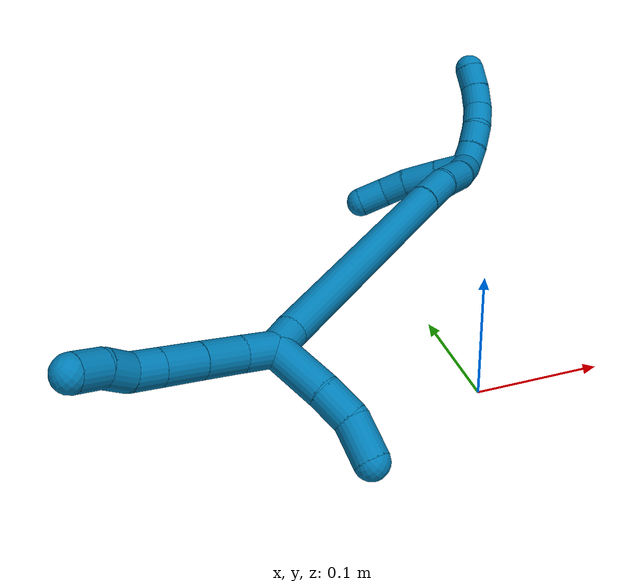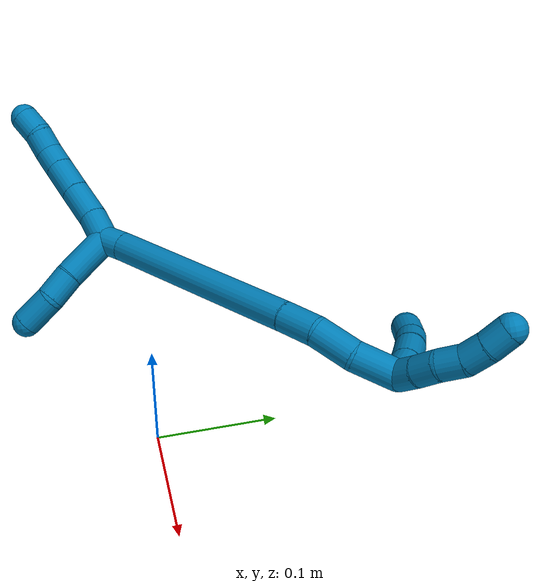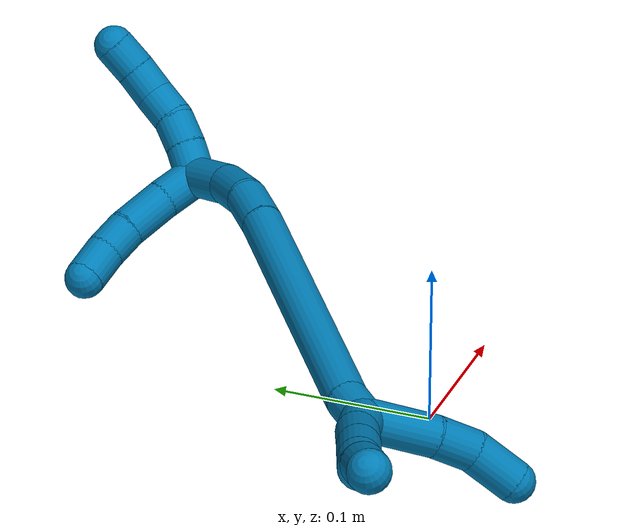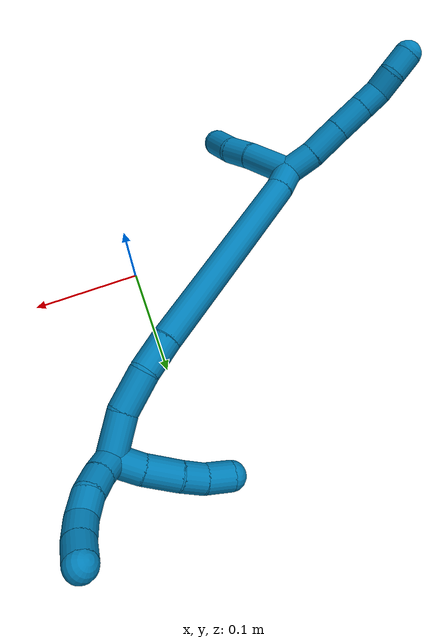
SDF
<sdf version="1.7">
 <world name="default">
  <model name="9">
   <static>0</static>
   <link name="9">
    <collision name="collision-cylinder-e_1_2_8">
     <pose>-0.007751 -0.003467 0.010045 0.332373 -0.630218 -0.109243</pose>
     <geometry><cylinder><radius>0.0125</radius><length>0.026306</length></cylinder></geometry>
     <surface>
      <friction><ode><mu>1.16</mu><mu2>1.16</mu2><slip1>0</slip1><slip2>0</slip2></ode></friction>
      <contact><ode><kp>1e+06</kp><kd>1</kd><max_vel>0</max_vel><min_depth>0.001</min_depth></ode></contact>
     </surface>
    </collision>
    <visual name="visual-cylinder-e_1_2_8">
     <pose>-0.007751 -0.003467 0.010045 0.332373 -0.630218 -0.109243</pose>
     <geometry><cylinder><radius>0.0125</radius><length>0.026306</length></cylinder></geometry>
     <material><ambient>0 0.490196 0.709804 1</ambient></material>
    </visual>
    <collision name="collision-cylinder-e_2_8_9">
     <pose>-0.023287 -0.012956 0.032687 0.445894 -0.508596 -0.117722</pose>
     <geometry><cylinder><radius>0.0125</radius><length>0.031972</length></cylinder></geometry>
     <surface>
      <friction><ode><mu>1.16</mu><mu2>1.16</mu2><slip1>0</slip1><slip2>0</slip2></ode></friction>
      <contact><ode><kp>1e+06</kp><kd>1</kd><max_vel>0</max_vel><min_depth>0.001</min_depth></ode></contact>
     </surface>
    </collision>
    <visual name="visual-cylinder-e_2_8_9">
     <pose>-0.023287 -0.012956 0.032687 0.445894 -0.508596 -0.117722</pose>
     <geometry><cylinder><radius>0.0125</radius><length>0.031972</length></cylinder></geometry>
     <material><ambient>0 0.490196 0.709804 1</ambient></material>
    </visual>
    <collision name="collision-cylinder-e_3_9_10">
     <pose>-0.038522 -0.024433 0.056902 0.439017 -0.525946 -0.119978</pose>
     <geometry><cylinder><radius>0.0125</radius><length>0.029681</length></cylinder></geometry>
     <surface>
      <friction><ode><mu>1.16</mu><mu2>1.16</mu2><slip1>0</slip1><slip2>0</slip2></ode></friction>
      <contact><ode><kp>1e+06</kp><kd>1</kd><max_vel>0</max_vel><min_depth>0.001</min_depth></ode></contact>
     </surface>
    </collision>
    <visual name="visual-cylinder-e_3_9_10">
     <pose>-0.038522 -0.024433 0.056902 0.439017 -0.525946 -0.119978</pose>
     <geometry><cylinder><radius>0.0125</radius><length>0.029681</length></cylinder></geometry>
     <material><ambient>0 0.490196 0.709804 1</ambient></material>
    </visual>
    <collision name="collision-cylinder-e_4_10_11">
     <pose>-0.051098 -0.033633 0.076527 0.437448 -0.525472 -0.119424</pose>
     <geometry><cylinder><radius>0.0125</radius><length>0.020436</length></cylinder></geometry>
     <surface>
      <friction><ode><mu>1.16</mu><mu2>1.16</mu2><slip1>0</slip1><slip2>0</slip2></ode></friction>
      <contact><ode><kp>1e+06</kp><kd>1</kd><max_vel>0</max_vel><min_depth>0.001</min_depth></ode></contact>
     </surface>
    </collision>
    <visual name="visual-cylinder-e_4_10_11">
     <pose>-0.051098 -0.033633 0.076527 0.437448 -0.525472 -0.119424</pose>
     <geometry><cylinder><radius>0.0125</radius><length>0.020436</length></cylinder></geometry>
     <material><ambient>0 0.490196 0.709804 1</ambient></material>
    </visual>
    <collision name="collision-cylinder-e_5_11_12">
     <pose>-0.058091 -0.040784 0.093762 0.353606 -0.187639 -0.033621</pose>
     <geometry><cylinder><radius>0.0125</radius><length>0.020026</length></cylinder></geometry>
     <surface>
      <friction><ode><mu>1.16</mu><mu2>1.16</mu2><slip1>0</slip1><slip2>0</slip2></ode></friction>
      <contact><ode><kp>1e+06</kp><kd>1</kd><max_vel>0</max_vel><min_depth>0.001</min_depth></ode></contact>
     </surface>
    </collision>
    <visual name="visual-cylinder-e_5_11_12">
     <pose>-0.058091 -0.040784 0.093762 0.353606 -0.187639 -0.033621</pose>
     <geometry><cylinder><radius>0.0125</radius><length>0.020026</length></cylinder></geometry>
     <material><ambient>0 0.490196 0.709804 1</ambient></material>
    </visual>
    <collision name="collision-cylinder-e_6_12_6">
     <pose>-0.064184 -0.049316 0.111494 0.542427 -0.402305 -0.113279</pose>
     <geometry><cylinder><radius>0.0125</radius><length>0.021579</length></cylinder></geometry>
     <surface>
      <friction><ode><mu>1.16</mu><mu2>1.16</mu2><slip1>0</slip1><slip2>0</slip2></ode></friction>
      <contact><ode><kp>1e+06</kp><kd>1</kd><max_vel>0</max_vel><min_depth>0.001</min_depth></ode></contact>
     </surface>
    </collision>
    <visual name="visual-cylinder-e_6_12_6">
     <pose>-0.064184 -0.049316 0.111494 0.542427 -0.402305 -0.113279</pose>
     <geometry><cylinder><radius>0.0125</radius><length>0.021579</length></cylinder></geometry>
     <material><ambient>0 0.490196 0.709804 1</ambient></material>
    </visual>
    <collision name="collision-cylinder-e_1_2_13">
     <pose>0.005489 -0.017555 -0.012503 2.18967 0.249373 0.477029</pose>
     <geometry><cylinder><radius>0.0125</radius><length>0.044479</length></cylinder></geometry>
     <surface>
      <friction><ode><mu>1.16</mu><mu2>1.16</mu2><slip1>0</slip1><slip2>0</slip2></ode></friction>
      <contact><ode><kp>1e+06</kp><kd>1</kd><max_vel>0</max_vel><min_depth>0.001</min_depth></ode></contact>
     </surface>
    </collision>
    <visual name="visual-cylinder-e_1_2_13">
     <pose>0.005489 -0.017555 -0.012503 2.18967 0.249373 0.477029</pose>
     <geometry><cylinder><radius>0.0125</radius><length>0.044479</length></cylinder></geometry>
     <material><ambient>0 0.490196 0.709804 1</ambient></material>
    </visual>
    <collision name="collision-cylinder-e_2_13_14">
     <pose>0.012966 -0.044625 -0.03314 2.27812 0.15754 0.339357</pose>
     <geometry><cylinder><radius>0.0125</radius><length>0.025352</length></cylinder></geometry>
     <surface>
      <friction><ode><mu>1.16</mu><mu2>1.16</mu2><slip1>0</slip1><slip2>0</slip2></ode></friction>
      <contact><ode><kp>1e+06</kp><kd>1</kd><max_vel>0</max_vel><min_depth>0.001</min_depth></ode></contact>
     </surface>
    </collision>
    <visual name="visual-cylinder-e_2_13_14">
     <pose>0.012966 -0.044625 -0.03314 2.27812 0.15754 0.339357</pose>
     <geometry><cylinder><radius>0.0125</radius><length>0.025352</length></cylinder></geometry>
     <material><ambient>0 0.490196 0.709804 1</ambient></material>
    </visual>
    <collision name="collision-cylinder-e_3_14_5">
     <pose>0.012615 -0.066302 -0.049887 2.18695 -0.15572 -0.299427</pose>
     <geometry><cylinder><radius>0.0125</radius><length>0.030169</length></cylinder></geometry>
     <surface>
      <friction><ode><mu>1.16</mu><mu2>1.16</mu2><slip1>0</slip1><slip2>0</slip2></ode></friction>
      <contact><ode><kp>1e+06</kp><kd>1</kd><max_vel>0</max_vel><min_depth>0.001</min_depth></ode></contact>
     </surface>
    </collision>
    <visual name="visual-cylinder-e_3_14_5">
     <pose>0.012615 -0.066302 -0.049887 2.18695 -0.15572 -0.299427</pose>
     <geometry><cylinder><radius>0.0125</radius><length>0.030169</length></cylinder></geometry>
     <material><ambient>0 0.490196 0.709804 1</ambient></material>
    </visual>
    <collision name="collision-cylinder-e_1_2_15">
     <pose>0.005602 0.007728 -0.004244 -2.07302 0.566016 -0.913647</pose>
     <geometry><cylinder><radius>0.0125</radius><length>0.020892</length></cylinder></geometry>
     <surface>
      <friction><ode><mu>1.16</mu><mu2>1.16</mu2><slip1>0</slip1><slip2>0</slip2></ode></friction>
      <contact><ode><kp>1e+06</kp><kd>1</kd><max_vel>0</max_vel><min_depth>0.001</min_depth></ode></contact>
     </surface>
    </collision>
    <visual name="visual-cylinder-e_1_2_15">
     <pose>0.005602 0.007728 -0.004244 -2.07302 0.566016 -0.913647</pose>
     <geometry><cylinder><radius>0.0125</radius><length>0.020892</length></cylinder></geometry>
     <material><ambient>0 0.490196 0.709804 1</ambient></material>
    </visual>
    <collision name="collision-cylinder-e_2_15_16">
     <pose>0.068966 0.073247 -0.04369 -2.1179 0.70659 -1.16175</pose>
     <geometry><cylinder><radius>0.0125</radius><length>0.177937</length></cylinder></geometry>
     <surface>
      <friction><ode><mu>1.16</mu><mu2>1.16</mu2><slip1>0</slip1><slip2>0</slip2></ode></friction>
      <contact><ode><kp>1e+06</kp><kd>1</kd><max_vel>0</max_vel><min_depth>0.001</min_depth></ode></contact>
     </surface>
    </collision>
    <visual name="visual-cylinder-e_2_15_16">
     <pose>0.068966 0.073247 -0.04369 -2.1179 0.70659 -1.16175</pose>
     <geometry><cylinder><radius>0.0125</radius><length>0.177937</length></cylinder></geometry>
     <material><ambient>0 0.490196 0.709804 1</ambient></material>
    </visual>
    <collision name="collision-cylinder-e_3_16_17">
     <pose>0.135865 0.141383 -0.085646 -2.14916 0.636725 -1.09365</pose>
     <geometry><cylinder><radius>0.0125</radius><length>0.030732</length></cylinder></geometry>
     <surface>
      <friction><ode><mu>1.16</mu><mu2>1.16</mu2><slip1>0</slip1><slip2>0</slip2></ode></friction>
      <contact><ode><kp>1e+06</kp><kd>1</kd><max_vel>0</max_vel><min_depth>0.001</min_depth></ode></contact>
     </surface>
    </collision>
    <visual name="visual-cylinder-e_3_16_17">
     <pose>0.135865 0.141383 -0.085646 -2.14916 0.636725 -1.09365</pose>
     <geometry><cylinder><radius>0.0125</radius><length>0.030732</length></cylinder></geometry>
     <material><ambient>0 0.490196 0.709804 1</ambient></material>
    </visual>
    <collision name="collision-cylinder-e_4_17_18">
     <pose>0.151793 0.163241 -0.103001 -2.31504 0.409477 -0.884461</pose>
     <geometry><cylinder><radius>0.0125</radius><length>0.03412</length></cylinder></geometry>
     <surface>
      <friction><ode><mu>1.16</mu><mu2>1.16</mu2><slip1>0</slip1><slip2>0</slip2></ode></friction>
      <contact><ode><kp>1e+06</kp><kd>1</kd><max_vel>0</max_vel><min_depth>0.001</min_depth></ode></contact>
     </surface>
    </collision>
    <visual name="visual-cylinder-e_4_17_18">
     <pose>0.151793 0.163241 -0.103001 -2.31504 0.409477 -0.884461</pose>
     <geometry><cylinder><radius>0.0125</radius><length>0.03412</length></cylinder></geometry>
     <material><ambient>0 0.490196 0.709804 1</ambient></material>
    </visual>
    <collision name="collision-cylinder-e_5_18_1">
     <pose>0.162127 0.189572 -0.123482 -2.15877 0.196303 -0.363894</pose>
     <geometry><cylinder><radius>0.0125</radius><length>0.036318</length></cylinder></geometry>
     <surface>
      <friction><ode><mu>1.16</mu><mu2>1.16</mu2><slip1>0</slip1><slip2>0</slip2></ode></friction>
      <contact><ode><kp>1e+06</kp><kd>1</kd><max_vel>0</max_vel><min_depth>0.001</min_depth></ode></contact>
     </surface>
    </collision>
    <visual name="visual-cylinder-e_5_18_1">
     <pose>0.162127 0.189572 -0.123482 -2.15877 0.196303 -0.363894</pose>
     <geometry><cylinder><radius>0.0125</radius><length>0.036318</length></cylinder></geometry>
     <material><ambient>0 0.490196 0.709804 1</ambient></material>
    </visual>
    <collision name="collision-cylinder-e_1_1_19">
     <pose>0.154522 0.210311 -0.131191 -1.21944 -1.05608 0.773793</pose>
     <geometry><cylinder><radius>0.0125</radius><length>0.025612</length></cylinder></geometry>
     <surface>
      <friction><ode><mu>1.16</mu><mu2>1.16</mu2><slip1>0</slip1><slip2>0</slip2></ode></friction>
      <contact><ode><kp>1e+06</kp><kd>1</kd><max_vel>0</max_vel><min_depth>0.001</min_depth></ode></contact>
     </surface>
    </collision>
    <visual name="visual-cylinder-e_1_1_19">
     <pose>0.154522 0.210311 -0.131191 -1.21944 -1.05608 0.773793</pose>
     <geometry><cylinder><radius>0.0125</radius><length>0.025612</length></cylinder></geometry>
     <material><ambient>0 0.490196 0.709804 1</ambient></material>
    </visual>
    <collision name="collision-cylinder-e_2_19_20">
     <pose>0.129585 0.221739 -0.12547 -0.998297 -1.12708 0.663544</pose>
     <geometry><cylinder><radius>0.0125</radius><length>0.030538</length></cylinder></geometry>
     <surface>
      <friction><ode><mu>1.16</mu><mu2>1.16</mu2><slip1>0</slip1><slip2>0</slip2></ode></friction>
      <contact><ode><kp>1e+06</kp><kd>1</kd><max_vel>0</max_vel><min_depth>0.001</min_depth></ode></contact>
     </surface>
    </collision>
    <visual name="visual-cylinder-e_2_19_20">
     <pose>0.129585 0.221739 -0.12547 -0.998297 -1.12708 0.663544</pose>
     <geometry><cylinder><radius>0.0125</radius><length>0.030538</length></cylinder></geometry>
     <material><ambient>0 0.490196 0.709804 1</ambient></material>
    </visual>
    <collision name="collision-cylinder-e_3_20_21">
     <pose>0.106049 0.230019 -0.120312 -1.04514 -1.25337 0.790213</pose>
     <geometry><cylinder><radius>0.0125</radius><length>0.020518</length></cylinder></geometry>
     <surface>
      <friction><ode><mu>1.16</mu><mu2>1.16</mu2><slip1>0</slip1><slip2>0</slip2></ode></friction>
      <contact><ode><kp>1e+06</kp><kd>1</kd><max_vel>0</max_vel><min_depth>0.001</min_depth></ode></contact>
     </surface>
    </collision>
    <visual name="visual-cylinder-e_3_20_21">
     <pose>0.106049 0.230019 -0.120312 -1.04514 -1.25337 0.790213</pose>
     <geometry><cylinder><radius>0.0125</radius><length>0.020518</length></cylinder></geometry>
     <material><ambient>0 0.490196 0.709804 1</ambient></material>
    </visual>
    <collision name="collision-cylinder-e_4_21_4">
     <pose>0.08514 0.233969 -0.115525 -0.355468 -1.27576 0.264744</pose>
     <geometry><cylinder><radius>0.0125</radius><length>0.023333</length></cylinder></geometry>
     <surface>
      <friction><ode><mu>1.16</mu><mu2>1.16</mu2><slip1>0</slip1><slip2>0</slip2></ode></friction>
      <contact><ode><kp>1e+06</kp><kd>1</kd><max_vel>0</max_vel><min_depth>0.001</min_depth></ode></contact>
     </surface>
    </collision>
    <visual name="visual-cylinder-e_4_21_4">
     <pose>0.08514 0.233969 -0.115525 -0.355468 -1.27576 0.264744</pose>
     <geometry><cylinder><radius>0.0125</radius><length>0.023333</length></cylinder></geometry>
     <material><ambient>0 0.490196 0.709804 1</ambient></material>
    </visual>
    <collision name="collision-cylinder-e_1_1_22">
     <pose>0.173466 0.210414 -0.131647 -1.2935 0.894251 -0.694787</pose>
     <geometry><cylinder><radius>0.0125</radius><length>0.02</length></cylinder></geometry>
     <surface>
      <friction><ode><mu>1.16</mu><mu2>1.16</mu2><slip1>0</slip1><slip2>0</slip2></ode></friction>
      <contact><ode><kp>1e+06</kp><kd>1</kd><max_vel>0</max_vel><min_depth>0.001</min_depth></ode></contact>
     </surface>
    </collision>
    <visual name="visual-cylinder-e_1_1_22">
     <pose>0.173466 0.210414 -0.131647 -1.2935 0.894251 -0.694787</pose>
     <geometry><cylinder><radius>0.0125</radius><length>0.02</length></cylinder></geometry>
     <material><ambient>0 0.490196 0.709804 1</ambient></material>
    </visual>
    <collision name="collision-cylinder-e_2_22_23">
     <pose>0.188351 0.223155 -0.127784 -1.2614 0.787686 -0.589204</pose>
     <geometry><cylinder><radius>0.0125</radius><length>0.02</length></cylinder></geometry>
     <surface>
      <friction><ode><mu>1.16</mu><mu2>1.16</mu2><slip1>0</slip1><slip2>0</slip2></ode></friction>
      <contact><ode><kp>1e+06</kp><kd>1</kd><max_vel>0</max_vel><min_depth>0.001</min_depth></ode></contact>
     </surface>
    </collision>
    <visual name="visual-cylinder-e_2_22_23">
     <pose>0.188351 0.223155 -0.127784 -1.2614 0.787686 -0.589204</pose>
     <geometry><cylinder><radius>0.0125</radius><length>0.02</length></cylinder></geometry>
     <material><ambient>0 0.490196 0.709804 1</ambient></material>
    </visual>
    <collision name="collision-cylinder-e_3_23_24">
     <pose>0.200746 0.238272 -0.124484 -1.43444 0.559476 -0.490986</pose>
     <geometry><cylinder><radius>0.0125</radius><length>0.02</length></cylinder></geometry>
     <surface>
      <friction><ode><mu>1.16</mu><mu2>1.16</mu2><slip1>0</slip1><slip2>0</slip2></ode></friction>
      <contact><ode><kp>1e+06</kp><kd>1</kd><max_vel>0</max_vel><min_depth>0.001</min_depth></ode></contact>
     </surface>
    </collision>
    <visual name="visual-cylinder-e_3_23_24">
     <pose>0.200746 0.238272 -0.124484 -1.43444 0.559476 -0.490986</pose>
     <geometry><cylinder><radius>0.0125</radius><length>0.02</length></cylinder></geometry>
     <material><ambient>0 0.490196 0.709804 1</ambient></material>
    </visual>
    <collision name="collision-cylinder-e_4_24_25">
     <pose>0.210872 0.254366 -0.119146 -1.07273 0.502783 -0.303024</pose>
     <geometry><cylinder><radius>0.0125</radius><length>0.02</length></cylinder></geometry>
     <surface>
      <friction><ode><mu>1.16</mu><mu2>1.16</mu2><slip1>0</slip1><slip2>0</slip2></ode></friction>
      <contact><ode><kp>1e+06</kp><kd>1</kd><max_vel>0</max_vel><min_depth>0.001</min_depth></ode></contact>
     </surface>
    </collision>
    <visual name="visual-cylinder-e_4_24_25">
     <pose>0.210872 0.254366 -0.119146 -1.07273 0.502783 -0.303024</pose>
     <geometry><cylinder><radius>0.0125</radius><length>0.02</length></cylinder></geometry>
     <material><ambient>0 0.490196 0.709804 1</ambient></material>
    </visual>
    <collision name="collision-cylinder-e_5_25_3">
     <pose>0.219483 0.26973 -0.109778 -0.976358 0.389061 -0.208499</pose>
     <geometry><cylinder><radius>0.0125</radius><length>0.02</length></cylinder></geometry>
     <surface>
      <friction><ode><mu>1.16</mu><mu2>1.16</mu2><slip1>0</slip1><slip2>0</slip2></ode></friction>
      <contact><ode><kp>1e+06</kp><kd>1</kd><max_vel>0</max_vel><min_depth>0.001</min_depth></ode></contact>
     </surface>
    </collision>
    <visual name="visual-cylinder-e_5_25_3">
     <pose>0.219483 0.26973 -0.109778 -0.976358 0.389061 -0.208499</pose>
     <geometry><cylinder><radius>0.0125</radius><length>0.02</length></cylinder></geometry>
     <material><ambient>0 0.490196 0.709804 1</ambient></material>
    </visual>
    <collision name="collision-sphere-3">
     <pose>0.223277 0.277395 -0.104596 0 -0 0</pose>
     <geometry><sphere><radius>0.0125</radius></sphere></geometry>
     <surface>
      <friction><ode><mu>1.16</mu><mu2>1.16</mu2><slip1>0</slip1><slip2>0</slip2></ode></friction>
      <contact><ode><kp>1e+06</kp><kd>1</kd><max_vel>0</max_vel><min_depth>0.001</min_depth></ode></contact>
     </surface>
    </collision>
    <visual name="visual-sphere-3">
     <pose>0.223277 0.277395 -0.104596 0 -0 0</pose>
     <geometry><sphere><radius>0.0125</radius></sphere></geometry>
     <material><ambient>0 0.490196 0.709804 1</ambient></material>
    </visual>
    <collision name="collision-sphere-25">
     <pose>0.21569 0.262064 -0.11496 0 -0 0</pose>
     <geometry><sphere><radius>0.0125</radius></sphere></geometry>
     <surface>
      <friction><ode><mu>1.16</mu><mu2>1.16</mu2><slip1>0</slip1><slip2>0</slip2></ode></friction>
      <contact><ode><kp>1e+06</kp><kd>1</kd><max_vel>0</max_vel><min_depth>0.001</min_depth></ode></contact>
     </surface>
    </collision>
    <visual name="visual-sphere-25">
     <pose>0.21569 0.262064 -0.11496 0 -0 0</pose>
     <geometry><sphere><radius>0.0125</radius></sphere></geometry>
     <material><ambient>0 0.490196 0.709804 1</ambient></material>
    </visual>
    <collision name="collision-sphere-24">
     <pose>0.206053 0.246669 -0.123332 0 -0 0</pose>
     <geometry><sphere><radius>0.0125</radius></sphere></geometry>
     <surface>
      <friction><ode><mu>1.16</mu><mu2>1.16</mu2><slip1>0</slip1><slip2>0</slip2></ode></friction>
      <contact><ode><kp>1e+06</kp><kd>1</kd><max_vel>0</max_vel><min_depth>0.001</min_depth></ode></contact>
     </surface>
    </collision>
    <visual name="visual-sphere-24">
     <pose>0.206053 0.246669 -0.123332 0 -0 0</pose>
     <geometry><sphere><radius>0.0125</radius></sphere></geometry>
     <material><ambient>0 0.490196 0.709804 1</ambient></material>
    </visual>
    <collision name="collision-sphere-23">
     <pose>0.195438 0.229875 -0.125636 0 -0 0</pose>
     <geometry><sphere><radius>0.0125</radius></sphere></geometry>
     <surface>
      <friction><ode><mu>1.16</mu><mu2>1.16</mu2><slip1>0</slip1><slip2>0</slip2></ode></friction>
      <contact><ode><kp>1e+06</kp><kd>1</kd><max_vel>0</max_vel><min_depth>0.001</min_depth></ode></contact>
     </surface>
    </collision>
    <visual name="visual-sphere-23">
     <pose>0.195438 0.229875 -0.125636 0 -0 0</pose>
     <geometry><sphere><radius>0.0125</radius></sphere></geometry>
     <material><ambient>0 0.490196 0.709804 1</ambient></material>
    </visual>
    <collision name="collision-sphere-22">
     <pose>0.181264 0.216435 -0.129933 0 -0 0</pose>
     <geometry><sphere><radius>0.0125</radius></sphere></geometry>
     <surface>
      <friction><ode><mu>1.16</mu><mu2>1.16</mu2><slip1>0</slip1><slip2>0</slip2></ode></friction>
      <contact><ode><kp>1e+06</kp><kd>1</kd><max_vel>0</max_vel><min_depth>0.001</min_depth></ode></contact>
     </surface>
    </collision>
    <visual name="visual-sphere-22">
     <pose>0.181264 0.216435 -0.129933 0 -0 0</pose>
     <geometry><sphere><radius>0.0125</radius></sphere></geometry>
     <material><ambient>0 0.490196 0.709804 1</ambient></material>
    </visual>
    <collision name="collision-sphere-4">
     <pose>0.073978 0.23515 -0.112345 0 -0 0</pose>
     <geometry><sphere><radius>0.0125</radius></sphere></geometry>
     <surface>
      <friction><ode><mu>1.16</mu><mu2>1.16</mu2><slip1>0</slip1><slip2>0</slip2></ode></friction>
      <contact><ode><kp>1e+06</kp><kd>1</kd><max_vel>0</max_vel><min_depth>0.001</min_depth></ode></contact>
     </surface>
    </collision>
    <visual name="visual-sphere-4">
     <pose>0.073978 0.23515 -0.112345 0 -0 0</pose>
     <geometry><sphere><radius>0.0125</radius></sphere></geometry>
     <material><ambient>0 0.490196 0.709804 1</ambient></material>
    </visual>
    <collision name="collision-sphere-21">
     <pose>0.096302 0.232789 -0.118706 0 -0 0</pose>
     <geometry><sphere><radius>0.0125</radius></sphere></geometry>
     <surface>
      <friction><ode><mu>1.16</mu><mu2>1.16</mu2><slip1>0</slip1><slip2>0</slip2></ode></friction>
      <contact><ode><kp>1e+06</kp><kd>1</kd><max_vel>0</max_vel><min_depth>0.001</min_depth></ode></contact>
     </surface>
    </collision>
    <visual name="visual-sphere-21">
     <pose>0.096302 0.232789 -0.118706 0 -0 0</pose>
     <geometry><sphere><radius>0.0125</radius></sphere></geometry>
     <material><ambient>0 0.490196 0.709804 1</ambient></material>
    </visual>
    <collision name="collision-sphere-20">
     <pose>0.115795 0.227249 -0.121919 0 -0 0</pose>
     <geometry><sphere><radius>0.0125</radius></sphere></geometry>
     <surface>
      <friction><ode><mu>1.16</mu><mu2>1.16</mu2><slip1>0</slip1><slip2>0</slip2></ode></friction>
      <contact><ode><kp>1e+06</kp><kd>1</kd><max_vel>0</max_vel><min_depth>0.001</min_depth></ode></contact>
     </surface>
    </collision>
    <visual name="visual-sphere-20">
     <pose>0.115795 0.227249 -0.121919 0 -0 0</pose>
     <geometry><sphere><radius>0.0125</radius></sphere></geometry>
     <material><ambient>0 0.490196 0.709804 1</ambient></material>
    </visual>
    <collision name="collision-sphere-12">
     <pose>-0.059959 -0.044191 0.102991 0 -0 0</pose>
     <geometry><sphere><radius>0.0125</radius></sphere></geometry>
     <surface>
      <friction><ode><mu>1.16</mu><mu2>1.16</mu2><slip1>0</slip1><slip2>0</slip2></ode></friction>
      <contact><ode><kp>1e+06</kp><kd>1</kd><max_vel>0</max_vel><min_depth>0.001</min_depth></ode></contact>
     </surface>
    </collision>
    <visual name="visual-sphere-12">
     <pose>-0.059959 -0.044191 0.102991 0 -0 0</pose>
     <geometry><sphere><radius>0.0125</radius></sphere></geometry>
     <material><ambient>0 0.490196 0.709804 1</ambient></material>
    </visual>
    <collision name="collision-sphere-11">
     <pose>-0.056223 -0.037378 0.084534 0 -0 0</pose>
     <geometry><sphere><radius>0.0125</radius></sphere></geometry>
     <surface>
      <friction><ode><mu>1.16</mu><mu2>1.16</mu2><slip1>0</slip1><slip2>0</slip2></ode></friction>
      <contact><ode><kp>1e+06</kp><kd>1</kd><max_vel>0</max_vel><min_depth>0.001</min_depth></ode></contact>
     </surface>
    </collision>
    <visual name="visual-sphere-11">
     <pose>-0.056223 -0.037378 0.084534 0 -0 0</pose>
     <geometry><sphere><radius>0.0125</radius></sphere></geometry>
     <material><ambient>0 0.490196 0.709804 1</ambient></material>
    </visual>
    <collision name="collision-sphere-10">
     <pose>-0.045972 -0.029888 0.06852 0 -0 0</pose>
     <geometry><sphere><radius>0.0125</radius></sphere></geometry>
     <surface>
      <friction><ode><mu>1.16</mu><mu2>1.16</mu2><slip1>0</slip1><slip2>0</slip2></ode></friction>
      <contact><ode><kp>1e+06</kp><kd>1</kd><max_vel>0</max_vel><min_depth>0.001</min_depth></ode></contact>
     </surface>
    </collision>
    <visual name="visual-sphere-10">
     <pose>-0.045972 -0.029888 0.06852 0 -0 0</pose>
     <geometry><sphere><radius>0.0125</radius></sphere></geometry>
     <material><ambient>0 0.490196 0.709804 1</ambient></material>
    </visual>
    <collision name="collision-sphere-9">
     <pose>-0.031072 -0.018978 0.045284 0 -0 0</pose>
     <geometry><sphere><radius>0.0125</radius></sphere></geometry>
     <surface>
      <friction><ode><mu>1.16</mu><mu2>1.16</mu2><slip1>0</slip1><slip2>0</slip2></ode></friction>
      <contact><ode><kp>1e+06</kp><kd>1</kd><max_vel>0</max_vel><min_depth>0.001</min_depth></ode></contact>
     </surface>
    </collision>
    <visual name="visual-sphere-9">
     <pose>-0.031072 -0.018978 0.045284 0 -0 0</pose>
     <geometry><sphere><radius>0.0125</radius></sphere></geometry>
     <material><ambient>0 0.490196 0.709804 1</ambient></material>
    </visual>
    <collision name="collision-sphere-2">
     <geometry><sphere><radius>0.0125</radius></sphere></geometry>
     <surface>
      <friction><ode><mu>1.16</mu><mu2>1.16</mu2><slip1>0</slip1><slip2>0</slip2></ode></friction>
      <contact><ode><kp>1e+06</kp><kd>1</kd><max_vel>0</max_vel><min_depth>0.001</min_depth></ode></contact>
     </surface>
    </collision>
    <visual name="visual-sphere-2">
     <geometry><sphere><radius>0.0125</radius></sphere></geometry>
     <material><ambient>0 0.490196 0.709804 1</ambient></material>
    </visual>
    <collision name="collision-sphere-19">
     <pose>0.143376 0.21623 -0.129021 0 -0 0</pose>
     <geometry><sphere><radius>0.0125</radius></sphere></geometry>
     <surface>
      <friction><ode><mu>1.16</mu><mu2>1.16</mu2><slip1>0</slip1><slip2>0</slip2></ode></friction>
      <contact><ode><kp>1e+06</kp><kd>1</kd><max_vel>0</max_vel><min_depth>0.001</min_depth></ode></contact>
     </surface>
    </collision>
    <visual name="visual-sphere-19">
     <pose>0.143376 0.21623 -0.129021 0 -0 0</pose>
     <geometry><sphere><radius>0.0125</radius></sphere></geometry>
     <material><ambient>0 0.490196 0.709804 1</ambient></material>
    </visual>
    <collision name="collision-sphere-8">
     <pose>-0.015503 -0.006935 0.02009 0 -0 0</pose>
     <geometry><sphere><radius>0.0125</radius></sphere></geometry>
     <surface>
      <friction><ode><mu>1.16</mu><mu2>1.16</mu2><slip1>0</slip1><slip2>0</slip2></ode></friction>
      <contact><ode><kp>1e+06</kp><kd>1</kd><max_vel>0</max_vel><min_depth>0.001</min_depth></ode></contact>
     </surface>
    </collision>
    <visual name="visual-sphere-8">
     <pose>-0.015503 -0.006935 0.02009 0 -0 0</pose>
     <geometry><sphere><radius>0.0125</radius></sphere></geometry>
     <material><ambient>0 0.490196 0.709804 1</ambient></material>
    </visual>
    <collision name="collision-sphere-6">
     <pose>-0.068408 -0.054441 0.119997 0 -0 0</pose>
     <geometry><sphere><radius>0.0125</radius></sphere></geometry>
     <surface>
      <friction><ode><mu>1.16</mu><mu2>1.16</mu2><slip1>0</slip1><slip2>0</slip2></ode></friction>
      <contact><ode><kp>1e+06</kp><kd>1</kd><max_vel>0</max_vel><min_depth>0.001</min_depth></ode></contact>
     </surface>
    </collision>
    <visual name="visual-sphere-6">
     <pose>-0.068408 -0.054441 0.119997 0 -0 0</pose>
     <geometry><sphere><radius>0.0125</radius></sphere></geometry>
     <material><ambient>0 0.490196 0.709804 1</ambient></material>
    </visual>
    <collision name="collision-sphere-13">
     <pose>0.010977 -0.035109 -0.025005 0 -0 0</pose>
     <geometry><sphere><radius>0.0125</radius></sphere></geometry>
     <surface>
      <friction><ode><mu>1.16</mu><mu2>1.16</mu2><slip1>0</slip1><slip2>0</slip2></ode></friction>
      <contact><ode><kp>1e+06</kp><kd>1</kd><max_vel>0</max_vel><min_depth>0.001</min_depth></ode></contact>
     </surface>
    </collision>
    <visual name="visual-sphere-13">
     <pose>0.010977 -0.035109 -0.025005 0 -0 0</pose>
     <geometry><sphere><radius>0.0125</radius></sphere></geometry>
     <material><ambient>0 0.490196 0.709804 1</ambient></material>
    </visual>
    <collision name="collision-sphere-14">
     <pose>0.014955 -0.05414 -0.041275 0 -0 0</pose>
     <geometry><sphere><radius>0.0125</radius></sphere></geometry>
     <surface>
      <friction><ode><mu>1.16</mu><mu2>1.16</mu2><slip1>0</slip1><slip2>0</slip2></ode></friction>
      <contact><ode><kp>1e+06</kp><kd>1</kd><max_vel>0</max_vel><min_depth>0.001</min_depth></ode></contact>
     </surface>
    </collision>
    <visual name="visual-sphere-14">
     <pose>0.014955 -0.05414 -0.041275 0 -0 0</pose>
     <geometry><sphere><radius>0.0125</radius></sphere></geometry>
     <material><ambient>0 0.490196 0.709804 1</ambient></material>
    </visual>
    <collision name="collision-sphere-5">
     <pose>0.010276 -0.078464 -0.058498 0 -0 0</pose>
     <geometry><sphere><radius>0.0125</radius></sphere></geometry>
     <surface>
      <friction><ode><mu>1.16</mu><mu2>1.16</mu2><slip1>0</slip1><slip2>0</slip2></ode></friction>
      <contact><ode><kp>1e+06</kp><kd>1</kd><max_vel>0</max_vel><min_depth>0.001</min_depth></ode></contact>
     </surface>
    </collision>
    <visual name="visual-sphere-5">
     <pose>0.010276 -0.078464 -0.058498 0 -0 0</pose>
     <geometry><sphere><radius>0.0125</radius></sphere></geometry>
     <material><ambient>0 0.490196 0.709804 1</ambient></material>
    </visual>
    <collision name="collision-sphere-15">
     <pose>0.011204 0.015456 -0.008488 0 -0 0</pose>
     <geometry><sphere><radius>0.0125</radius></sphere></geometry>
     <surface>
      <friction><ode><mu>1.16</mu><mu2>1.16</mu2><slip1>0</slip1><slip2>0</slip2></ode></friction>
      <contact><ode><kp>1e+06</kp><kd>1</kd><max_vel>0</max_vel><min_depth>0.001</min_depth></ode></contact>
     </surface>
    </collision>
    <visual name="visual-sphere-15">
     <pose>0.011204 0.015456 -0.008488 0 -0 0</pose>
     <geometry><sphere><radius>0.0125</radius></sphere></geometry>
     <material><ambient>0 0.490196 0.709804 1</ambient></material>
    </visual>
    <collision name="collision-sphere-16">
     <pose>0.126729 0.131038 -0.078892 0 -0 0</pose>
     <geometry><sphere><radius>0.0125</radius></sphere></geometry>
     <surface>
      <friction><ode><mu>1.16</mu><mu2>1.16</mu2><slip1>0</slip1><slip2>0</slip2></ode></friction>
      <contact><ode><kp>1e+06</kp><kd>1</kd><max_vel>0</max_vel><min_depth>0.001</min_depth></ode></contact>
     </surface>
    </collision>
    <visual name="visual-sphere-16">
     <pose>0.126729 0.131038 -0.078892 0 -0 0</pose>
     <geometry><sphere><radius>0.0125</radius></sphere></geometry>
     <material><ambient>0 0.490196 0.709804 1</ambient></material>
    </visual>
    <collision name="collision-sphere-17">
     <pose>0.145001 0.151729 -0.0924 0 -0 0</pose>
     <geometry><sphere><radius>0.0125</radius></sphere></geometry>
     <surface>
      <friction><ode><mu>1.16</mu><mu2>1.16</mu2><slip1>0</slip1><slip2>0</slip2></ode></friction>
      <contact><ode><kp>1e+06</kp><kd>1</kd><max_vel>0</max_vel><min_depth>0.001</min_depth></ode></contact>
     </surface>
    </collision>
    <visual name="visual-sphere-17">
     <pose>0.145001 0.151729 -0.0924 0 -0 0</pose>
     <geometry><sphere><radius>0.0125</radius></sphere></geometry>
     <material><ambient>0 0.490196 0.709804 1</ambient></material>
    </visual>
    <collision name="collision-sphere-18">
     <pose>0.158585 0.174753 -0.113603 0 -0 0</pose>
     <geometry><sphere><radius>0.0125</radius></sphere></geometry>
     <surface>
      <friction><ode><mu>1.16</mu><mu2>1.16</mu2><slip1>0</slip1><slip2>0</slip2></ode></friction>
      <contact><ode><kp>1e+06</kp><kd>1</kd><max_vel>0</max_vel><min_depth>0.001</min_depth></ode></contact>
     </surface>
    </collision>
    <visual name="visual-sphere-18">
     <pose>0.158585 0.174753 -0.113603 0 -0 0</pose>
     <geometry><sphere><radius>0.0125</radius></sphere></geometry>
     <material><ambient>0 0.490196 0.709804 1</ambient></material>
    </visual>
    <collision name="collision-sphere-1">
     <pose>0.165669 0.204392 -0.133361 0 -0 0</pose>
     <geometry><sphere><radius>0.0125</radius></sphere></geometry>
     <surface>
      <friction><ode><mu>1.16</mu><mu2>1.16</mu2><slip1>0</slip1><slip2>0</slip2></ode></friction>
      <contact><ode><kp>1e+06</kp><kd>1</kd><max_vel>0</max_vel><min_depth>0.001</min_depth></ode></contact>
     </surface>
    </collision>
    <visual name="visual-sphere-1">
     <pose>0.165669 0.204392 -0.133361 0 -0 0</pose>
     <geometry><sphere><radius>0.0125</radius></sphere></geometry>
     <material><ambient>0 0.490196 0.709804 1</ambient></material>
    </visual>
    <inertial>
     <pose>0.073115 0.091385 -0.049549 0 -0 0</pose>
     <mass>0.75</mass>
     <inertia>
      <ixx>-0.000145</ixx>
      <ixy>0</ixy>
      <ixz>0</ixz>
      <iyy>-0.000165</iyy>
      <iyz>0</iyz>
      <izz>-0.00062</izz>
     </inertia>
    </inertial>
   </link>
   <pose>-0.158824 -0.016232 0.086006 0.1091 -0.664505 -0.115082</pose>
  </model>
 </world>
</sdf>
